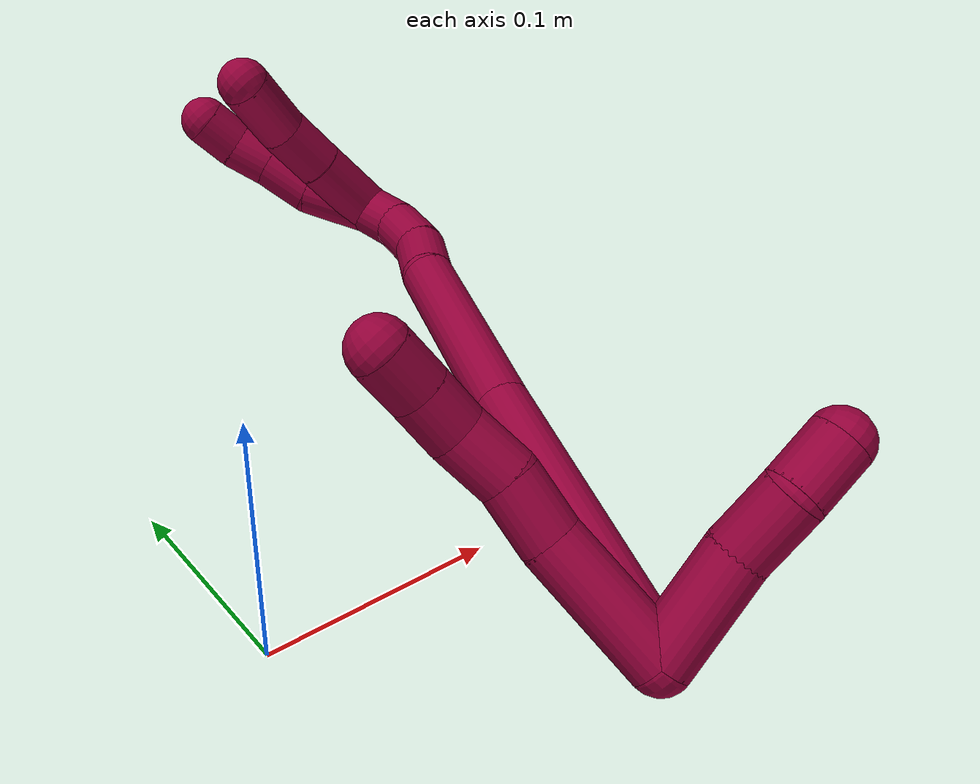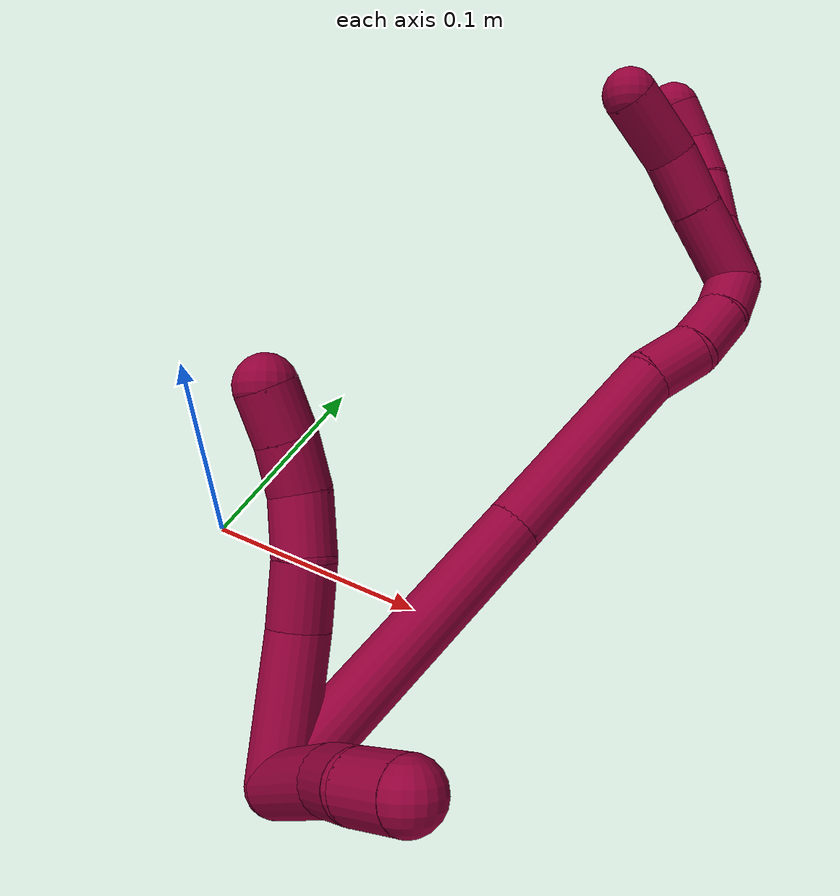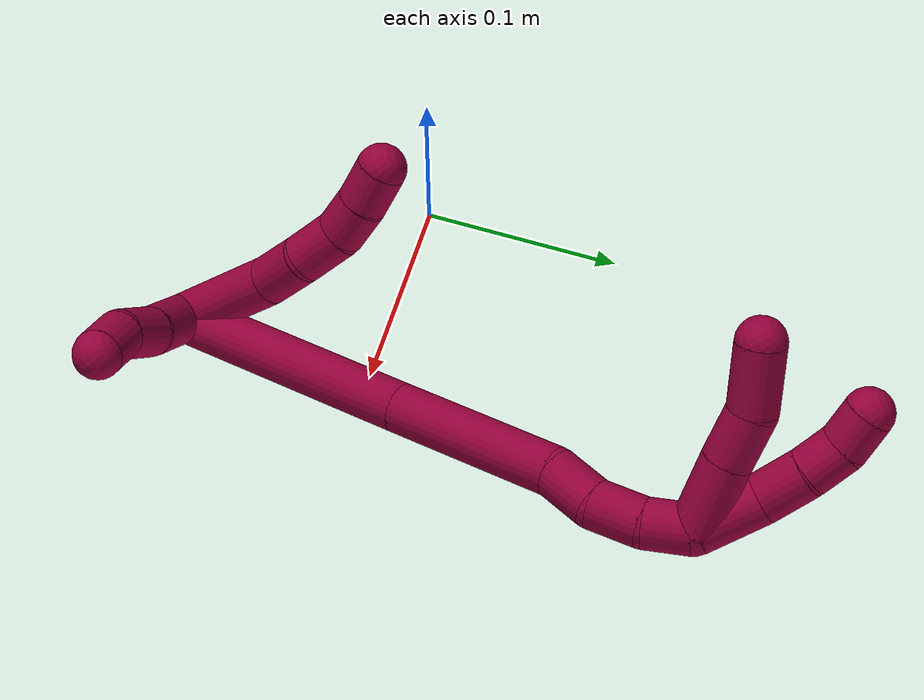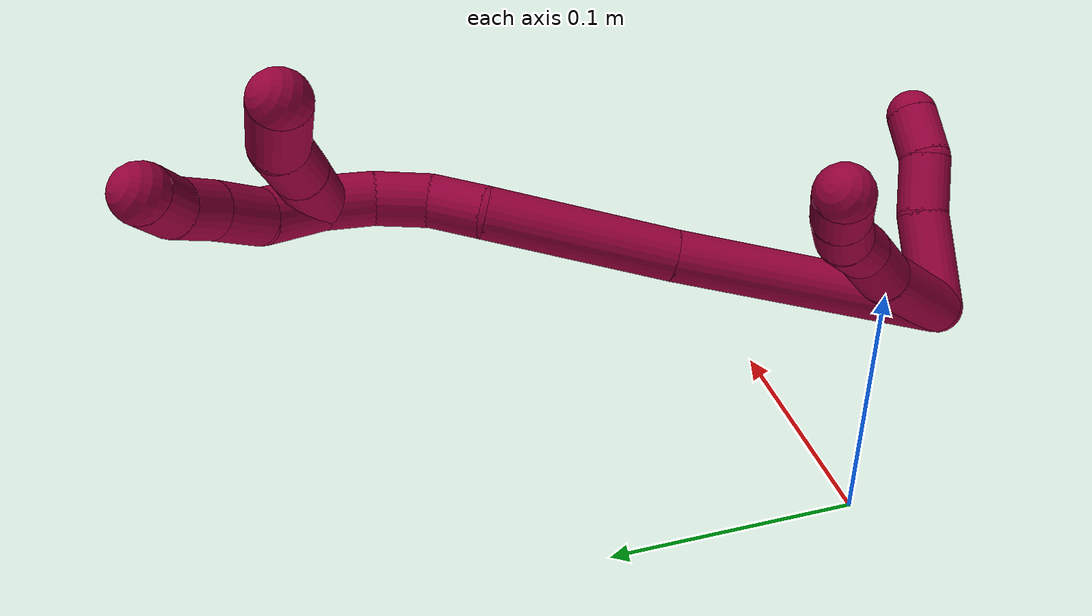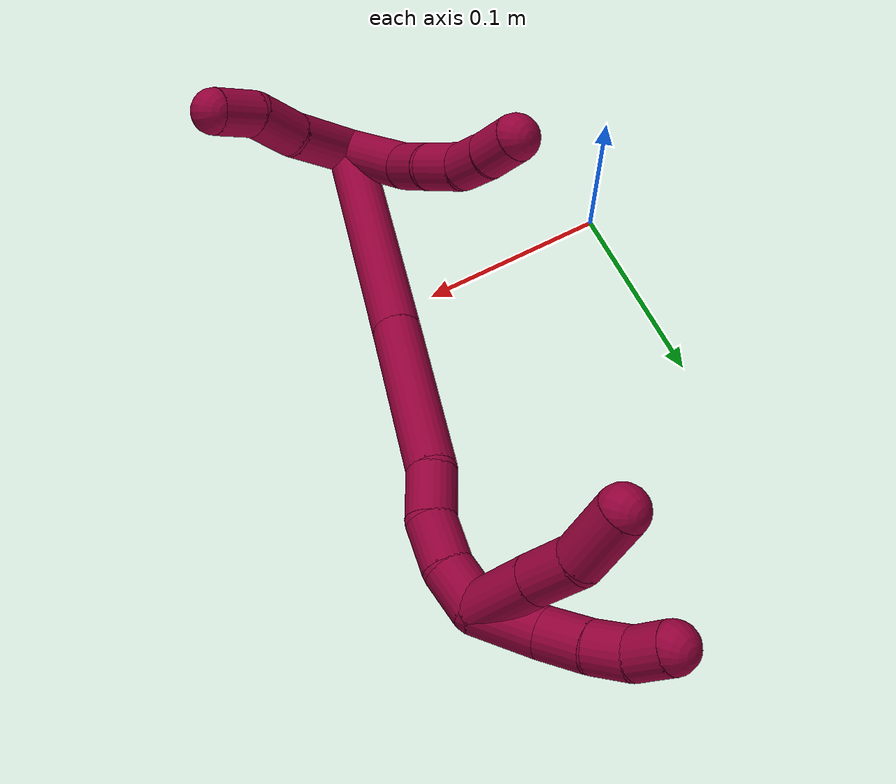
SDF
<sdf version="1.7">
 <world name="default">
  <model name="8">
   <static>0</static>
   <link name="8">
    <collision name="collision-cylinder-e_1_2_8">
     <pose>0.000251 0.003125 0.027883 -0.111617 0.00896 -0.000501</pose>
     <geometry><cylinder><radius>0.0125</radius><length>0.056116</length></cylinder></geometry>
     <surface>
      <friction><ode><mu>1.16</mu><mu2>1.16</mu2><slip1>0</slip1><slip2>0</slip2></ode></friction>
      <contact><ode><kp>1e+06</kp><kd>1</kd><max_vel>0</max_vel><min_depth>0.001</min_depth></ode></contact>
     </surface>
    </collision>
    <visual name="visual-cylinder-e_1_2_8">
     <pose>0.000251 0.003125 0.027883 -0.111617 0.00896 -0.000501</pose>
     <geometry><cylinder><radius>0.0125</radius><length>0.056116</length></cylinder></geometry>
     <material><ambient>0.584314 0 0.227451 1</ambient></material>
    </visual>
    <collision name="collision-cylinder-e_2_8_9">
     <pose>0.002611 0.006282 0.06888 -0.00243 0.159416 -0.000194</pose>
     <geometry><cylinder><radius>0.0125</radius><length>0.026567</length></cylinder></geometry>
     <surface>
      <friction><ode><mu>1.16</mu><mu2>1.16</mu2><slip1>0</slip1><slip2>0</slip2></ode></friction>
      <contact><ode><kp>1e+06</kp><kd>1</kd><max_vel>0</max_vel><min_depth>0.001</min_depth></ode></contact>
     </surface>
    </collision>
    <visual name="visual-cylinder-e_2_8_9">
     <pose>0.002611 0.006282 0.06888 -0.00243 0.159416 -0.000194</pose>
     <geometry><cylinder><radius>0.0125</radius><length>0.026567</length></cylinder></geometry>
     <material><ambient>0.584314 0 0.227451 1</ambient></material>
    </visual>
    <collision name="collision-cylinder-e_3_9_10">
     <pose>0.003808 0.005545 0.094271 0.0626 -0.07402 -0.002319</pose>
     <geometry><cylinder><radius>0.0125</radius><length>0.024666</length></cylinder></geometry>
     <surface>
      <friction><ode><mu>1.16</mu><mu2>1.16</mu2><slip1>0</slip1><slip2>0</slip2></ode></friction>
      <contact><ode><kp>1e+06</kp><kd>1</kd><max_vel>0</max_vel><min_depth>0.001</min_depth></ode></contact>
     </surface>
    </collision>
    <visual name="visual-cylinder-e_3_9_10">
     <pose>0.003808 0.005545 0.094271 0.0626 -0.07402 -0.002319</pose>
     <geometry><cylinder><radius>0.0125</radius><length>0.024666</length></cylinder></geometry>
     <material><ambient>0.584314 0 0.227451 1</ambient></material>
    </visual>
    <collision name="collision-cylinder-e_4_10_11">
     <pose>0.003643 0.001447 0.116597 0.319777 0.070412 0.01136</pose>
     <geometry><cylinder><radius>0.0125</radius><length>0.021229</length></cylinder></geometry>
     <surface>
      <friction><ode><mu>1.16</mu><mu2>1.16</mu2><slip1>0</slip1><slip2>0</slip2></ode></friction>
      <contact><ode><kp>1e+06</kp><kd>1</kd><max_vel>0</max_vel><min_depth>0.001</min_depth></ode></contact>
     </surface>
    </collision>
    <visual name="visual-cylinder-e_4_10_11">
     <pose>0.003643 0.001447 0.116597 0.319777 0.070412 0.01136</pose>
     <geometry><cylinder><radius>0.0125</radius><length>0.021229</length></cylinder></geometry>
     <material><ambient>0.584314 0 0.227451 1</ambient></material>
    </visual>
    <collision name="collision-cylinder-e_5_11_6">
     <pose>0.005135 -0.00638 0.13634 0.434547 0.069684 0.015389</pose>
     <geometry><cylinder><radius>0.0125</radius><length>0.021421</length></cylinder></geometry>
     <surface>
      <friction><ode><mu>1.16</mu><mu2>1.16</mu2><slip1>0</slip1><slip2>0</slip2></ode></friction>
      <contact><ode><kp>1e+06</kp><kd>1</kd><max_vel>0</max_vel><min_depth>0.001</min_depth></ode></contact>
     </surface>
    </collision>
    <visual name="visual-cylinder-e_5_11_6">
     <pose>0.005135 -0.00638 0.13634 0.434547 0.069684 0.015389</pose>
     <geometry><cylinder><radius>0.0125</radius><length>0.021421</length></cylinder></geometry>
     <material><ambient>0.584314 0 0.227451 1</ambient></material>
    </visual>
    <collision name="collision-cylinder-e_1_2_12">
     <pose>0.022641 0.001312 0.004606 -0.277595 1.36235 -0.225516</pose>
     <geometry><cylinder><radius>0.0125</radius><length>0.046283</length></cylinder></geometry>
     <surface>
      <friction><ode><mu>1.16</mu><mu2>1.16</mu2><slip1>0</slip1><slip2>0</slip2></ode></friction>
      <contact><ode><kp>1e+06</kp><kd>1</kd><max_vel>0</max_vel><min_depth>0.001</min_depth></ode></contact>
     </surface>
    </collision>
    <visual name="visual-cylinder-e_1_2_12">
     <pose>0.022641 0.001312 0.004606 -0.277595 1.36235 -0.225516</pose>
     <geometry><cylinder><radius>0.0125</radius><length>0.046283</length></cylinder></geometry>
     <material><ambient>0.584314 0 0.227451 1</ambient></material>
    </visual>
    <collision name="collision-cylinder-e_2_12_13">
     <pose>0.059433 0.001121 0.010936 0.717174 1.4105 0.617698</pose>
     <geometry><cylinder><radius>0.0125</radius><length>0.02867</length></cylinder></geometry>
     <surface>
      <friction><ode><mu>1.16</mu><mu2>1.16</mu2><slip1>0</slip1><slip2>0</slip2></ode></friction>
      <contact><ode><kp>1e+06</kp><kd>1</kd><max_vel>0</max_vel><min_depth>0.001</min_depth></ode></contact>
     </surface>
    </collision>
    <visual name="visual-cylinder-e_2_12_13">
     <pose>0.059433 0.001121 0.010936 0.717174 1.4105 0.617698</pose>
     <geometry><cylinder><radius>0.0125</radius><length>0.02867</length></cylinder></geometry>
     <material><ambient>0.584314 0 0.227451 1</ambient></material>
    </visual>
    <collision name="collision-cylinder-e_3_13_5">
     <pose>0.085756 0.00249 0.013316 -1.34645 1.33322 -1.12071</pose>
     <geometry><cylinder><radius>0.0125</radius><length>0.025046</length></cylinder></geometry>
     <surface>
      <friction><ode><mu>1.16</mu><mu2>1.16</mu2><slip1>0</slip1><slip2>0</slip2></ode></friction>
      <contact><ode><kp>1e+06</kp><kd>1</kd><max_vel>0</max_vel><min_depth>0.001</min_depth></ode></contact>
     </surface>
    </collision>
    <visual name="visual-cylinder-e_3_13_5">
     <pose>0.085756 0.00249 0.013316 -1.34645 1.33322 -1.12071</pose>
     <geometry><cylinder><radius>0.0125</radius><length>0.025046</length></cylinder></geometry>
     <material><ambient>0.584314 0 0.227451 1</ambient></material>
    </visual>
    <collision name="collision-cylinder-e_1_2_14">
     <pose>0.005156 0.047 0.047394 -0.781223 0.077096 -0.031759</pose>
     <geometry><cylinder><radius>0.0125</radius><length>0.133891</length></cylinder></geometry>
     <surface>
      <friction><ode><mu>1.16</mu><mu2>1.16</mu2><slip1>0</slip1><slip2>0</slip2></ode></friction>
      <contact><ode><kp>1e+06</kp><kd>1</kd><max_vel>0</max_vel><min_depth>0.001</min_depth></ode></contact>
     </surface>
    </collision>
    <visual name="visual-cylinder-e_1_2_14">
     <pose>0.005156 0.047 0.047394 -0.781223 0.077096 -0.031759</pose>
     <geometry><cylinder><radius>0.0125</radius><length>0.133891</length></cylinder></geometry>
     <material><ambient>0.584314 0 0.227451 1</ambient></material>
    </visual>
    <collision name="collision-cylinder-e_2_14_15">
     <pose>0.014942 0.125253 0.127301 -0.765637 0.102289 -0.04122</pose>
     <geometry><cylinder><radius>0.0125</radius><length>0.090672</length></cylinder></geometry>
     <surface>
      <friction><ode><mu>1.16</mu><mu2>1.16</mu2><slip1>0</slip1><slip2>0</slip2></ode></friction>
      <contact><ode><kp>1e+06</kp><kd>1</kd><max_vel>0</max_vel><min_depth>0.001</min_depth></ode></contact>
     </surface>
    </collision>
    <visual name="visual-cylinder-e_2_14_15">
     <pose>0.014942 0.125253 0.127301 -0.765637 0.102289 -0.04122</pose>
     <geometry><cylinder><radius>0.0125</radius><length>0.090672</length></cylinder></geometry>
     <material><ambient>0.584314 0 0.227451 1</ambient></material>
    </visual>
    <collision name="collision-cylinder-e_3_15_16">
     <pose>0.021918 0.167435 0.166532 -1.01964 0.180963 -0.101371</pose>
     <geometry><cylinder><radius>0.0125</radius><length>0.026082</length></cylinder></geometry>
     <surface>
      <friction><ode><mu>1.16</mu><mu2>1.16</mu2><slip1>0</slip1><slip2>0</slip2></ode></friction>
      <contact><ode><kp>1e+06</kp><kd>1</kd><max_vel>0</max_vel><min_depth>0.001</min_depth></ode></contact>
     </surface>
    </collision>
    <visual name="visual-cylinder-e_3_15_16">
     <pose>0.021918 0.167435 0.166532 -1.01964 0.180963 -0.101371</pose>
     <geometry><cylinder><radius>0.0125</radius><length>0.026082</length></cylinder></geometry>
     <material><ambient>0.584314 0 0.227451 1</ambient></material>
    </visual>
    <collision name="collision-cylinder-e_4_16_17">
     <pose>0.02329 0.187619 0.182 -0.813486 -0.076412 0.032928</pose>
     <geometry><cylinder><radius>0.0125</radius><length>0.025548</length></cylinder></geometry>
     <surface>
      <friction><ode><mu>1.16</mu><mu2>1.16</mu2><slip1>0</slip1><slip2>0</slip2></ode></friction>
      <contact><ode><kp>1e+06</kp><kd>1</kd><max_vel>0</max_vel><min_depth>0.001</min_depth></ode></contact>
     </surface>
    </collision>
    <visual name="visual-cylinder-e_4_16_17">
     <pose>0.02329 0.187619 0.182 -0.813486 -0.076412 0.032928</pose>
     <geometry><cylinder><radius>0.0125</radius><length>0.025548</length></cylinder></geometry>
     <material><ambient>0.584314 0 0.227451 1</ambient></material>
    </visual>
    <collision name="collision-cylinder-e_5_17_1">
     <pose>0.019072 0.203703 0.199945 -0.638733 -0.27592 0.091762</pose>
     <geometry><cylinder><radius>0.0125</radius><length>0.023806</length></cylinder></geometry>
     <surface>
      <friction><ode><mu>1.16</mu><mu2>1.16</mu2><slip1>0</slip1><slip2>0</slip2></ode></friction>
      <contact><ode><kp>1e+06</kp><kd>1</kd><max_vel>0</max_vel><min_depth>0.001</min_depth></ode></contact>
     </surface>
    </collision>
    <visual name="visual-cylinder-e_5_17_1">
     <pose>0.019072 0.203703 0.199945 -0.638733 -0.27592 0.091762</pose>
     <geometry><cylinder><radius>0.0125</radius><length>0.023806</length></cylinder></geometry>
     <material><ambient>0.584314 0 0.227451 1</ambient></material>
    </visual>
    <collision name="collision-cylinder-e_1_1_18">
     <pose>0.015537 0.199676 0.225046 0.598859 -0.015189 -0.004689</pose>
     <geometry><cylinder><radius>0.0125</radius><length>0.038519</length></cylinder></geometry>
     <surface>
      <friction><ode><mu>1.16</mu><mu2>1.16</mu2><slip1>0</slip1><slip2>0</slip2></ode></friction>
      <contact><ode><kp>1e+06</kp><kd>1</kd><max_vel>0</max_vel><min_depth>0.001</min_depth></ode></contact>
     </surface>
    </collision>
    <visual name="visual-cylinder-e_1_1_18">
     <pose>0.015537 0.199676 0.225046 0.598859 -0.015189 -0.004689</pose>
     <geometry><cylinder><radius>0.0125</radius><length>0.038519</length></cylinder></geometry>
     <material><ambient>0.584314 0 0.227451 1</ambient></material>
    </visual>
    <collision name="collision-cylinder-e_2_18_19">
     <pose>0.015116 0.181609 0.252527 0.557154 -0.009368 -0.002679</pose>
     <geometry><cylinder><radius>0.0125</radius><length>0.027276</length></cylinder></geometry>
     <surface>
      <friction><ode><mu>1.16</mu><mu2>1.16</mu2><slip1>0</slip1><slip2>0</slip2></ode></friction>
      <contact><ode><kp>1e+06</kp><kd>1</kd><max_vel>0</max_vel><min_depth>0.001</min_depth></ode></contact>
     </surface>
    </collision>
    <visual name="visual-cylinder-e_2_18_19">
     <pose>0.015116 0.181609 0.252527 0.557154 -0.009368 -0.002679</pose>
     <geometry><cylinder><radius>0.0125</radius><length>0.027276</length></cylinder></geometry>
     <material><ambient>0.584314 0 0.227451 1</ambient></material>
    </visual>
    <collision name="collision-cylinder-e_3_19_4">
     <pose>0.017042 0.161531 0.27518 0.859977 0.120345 0.055244</pose>
     <geometry><cylinder><radius>0.0125</radius><length>0.034205</length></cylinder></geometry>
     <surface>
      <friction><ode><mu>1.16</mu><mu2>1.16</mu2><slip1>0</slip1><slip2>0</slip2></ode></friction>
      <contact><ode><kp>1e+06</kp><kd>1</kd><max_vel>0</max_vel><min_depth>0.001</min_depth></ode></contact>
     </surface>
    </collision>
    <visual name="visual-cylinder-e_3_19_4">
     <pose>0.017042 0.161531 0.27518 0.859977 0.120345 0.055244</pose>
     <geometry><cylinder><radius>0.0125</radius><length>0.034205</length></cylinder></geometry>
     <material><ambient>0.584314 0 0.227451 1</ambient></material>
    </visual>
    <collision name="collision-cylinder-e_1_1_20">
     <pose>0.007741 0.211447 0.223941 -0.061853 -0.499331 0.015776</pose>
     <geometry><cylinder><radius>0.0125</radius><length>0.033784</length></cylinder></geometry>
     <surface>
      <friction><ode><mu>1.16</mu><mu2>1.16</mu2><slip1>0</slip1><slip2>0</slip2></ode></friction>
      <contact><ode><kp>1e+06</kp><kd>1</kd><max_vel>0</max_vel><min_depth>0.001</min_depth></ode></contact>
     </surface>
    </collision>
    <visual name="visual-cylinder-e_1_1_20">
     <pose>0.007741 0.211447 0.223941 -0.061853 -0.499331 0.015776</pose>
     <geometry><cylinder><radius>0.0125</radius><length>0.033784</length></cylinder></geometry>
     <material><ambient>0.584314 0 0.227451 1</ambient></material>
    </visual>
    <collision name="collision-cylinder-e_2_20_21">
     <pose>-0.003087 0.211795 0.251164 0.045805 -0.216832 -0.004986</pose>
     <geometry><cylinder><radius>0.0125</radius><length>0.025467</length></cylinder></geometry>
     <surface>
      <friction><ode><mu>1.16</mu><mu2>1.16</mu2><slip1>0</slip1><slip2>0</slip2></ode></friction>
      <contact><ode><kp>1e+06</kp><kd>1</kd><max_vel>0</max_vel><min_depth>0.001</min_depth></ode></contact>
     </surface>
    </collision>
    <visual name="visual-cylinder-e_2_20_21">
     <pose>-0.003087 0.211795 0.251164 0.045805 -0.216832 -0.004986</pose>
     <geometry><cylinder><radius>0.0125</radius><length>0.025467</length></cylinder></geometry>
     <material><ambient>0.584314 0 0.227451 1</ambient></material>
    </visual>
    <collision name="collision-cylinder-e_3_21_22">
     <pose>-0.008892 0.209802 0.27327 0.145907 -0.303531 -0.022354</pose>
     <geometry><cylinder><radius>0.0125</radius><length>0.020513</length></cylinder></geometry>
     <surface>
      <friction><ode><mu>1.16</mu><mu2>1.16</mu2><slip1>0</slip1><slip2>0</slip2></ode></friction>
      <contact><ode><kp>1e+06</kp><kd>1</kd><max_vel>0</max_vel><min_depth>0.001</min_depth></ode></contact>
     </surface>
    </collision>
    <visual name="visual-cylinder-e_3_21_22">
     <pose>-0.008892 0.209802 0.27327 0.145907 -0.303531 -0.022354</pose>
     <geometry><cylinder><radius>0.0125</radius><length>0.020513</length></cylinder></geometry>
     <material><ambient>0.584314 0 0.227451 1</ambient></material>
    </visual>
    <collision name="collision-cylinder-e_4_22_3">
     <pose>-0.012944 0.204299 0.29216 0.417138 -0.097619 -0.020677</pose>
     <geometry><cylinder><radius>0.0125</radius><length>0.020237</length></cylinder></geometry>
     <surface>
      <friction><ode><mu>1.16</mu><mu2>1.16</mu2><slip1>0</slip1><slip2>0</slip2></ode></friction>
      <contact><ode><kp>1e+06</kp><kd>1</kd><max_vel>0</max_vel><min_depth>0.001</min_depth></ode></contact>
     </surface>
    </collision>
    <visual name="visual-cylinder-e_4_22_3">
     <pose>-0.012944 0.204299 0.29216 0.417138 -0.097619 -0.020677</pose>
     <geometry><cylinder><radius>0.0125</radius><length>0.020237</length></cylinder></geometry>
     <material><ambient>0.584314 0 0.227451 1</ambient></material>
    </visual>
    <collision name="collision-sphere-3">
     <pose>-0.01393 0.200219 0.301367 0 -0 0</pose>
     <geometry><sphere><radius>0.0125</radius></sphere></geometry>
     <surface>
      <friction><ode><mu>1.16</mu><mu2>1.16</mu2><slip1>0</slip1><slip2>0</slip2></ode></friction>
      <contact><ode><kp>1e+06</kp><kd>1</kd><max_vel>0</max_vel><min_depth>0.001</min_depth></ode></contact>
     </surface>
    </collision>
    <visual name="visual-sphere-3">
     <pose>-0.01393 0.200219 0.301367 0 -0 0</pose>
     <geometry><sphere><radius>0.0125</radius></sphere></geometry>
     <material><ambient>0.584314 0 0.227451 1</ambient></material>
    </visual>
    <collision name="collision-sphere-22">
     <pose>-0.011958 0.208379 0.282954 0 -0 0</pose>
     <geometry><sphere><radius>0.0125</radius></sphere></geometry>
     <surface>
      <friction><ode><mu>1.16</mu><mu2>1.16</mu2><slip1>0</slip1><slip2>0</slip2></ode></friction>
      <contact><ode><kp>1e+06</kp><kd>1</kd><max_vel>0</max_vel><min_depth>0.001</min_depth></ode></contact>
     </surface>
    </collision>
    <visual name="visual-sphere-22">
     <pose>-0.011958 0.208379 0.282954 0 -0 0</pose>
     <geometry><sphere><radius>0.0125</radius></sphere></geometry>
     <material><ambient>0.584314 0 0.227451 1</ambient></material>
    </visual>
    <collision name="collision-sphere-21">
     <pose>-0.005827 0.211225 0.263586 0 -0 0</pose>
     <geometry><sphere><radius>0.0125</radius></sphere></geometry>
     <surface>
      <friction><ode><mu>1.16</mu><mu2>1.16</mu2><slip1>0</slip1><slip2>0</slip2></ode></friction>
      <contact><ode><kp>1e+06</kp><kd>1</kd><max_vel>0</max_vel><min_depth>0.001</min_depth></ode></contact>
     </surface>
    </collision>
    <visual name="visual-sphere-21">
     <pose>-0.005827 0.211225 0.263586 0 -0 0</pose>
     <geometry><sphere><radius>0.0125</radius></sphere></geometry>
     <material><ambient>0.584314 0 0.227451 1</ambient></material>
    </visual>
    <collision name="collision-sphere-20">
     <pose>-0.000348 0.212364 0.238742 0 -0 0</pose>
     <geometry><sphere><radius>0.0125</radius></sphere></geometry>
     <surface>
      <friction><ode><mu>1.16</mu><mu2>1.16</mu2><slip1>0</slip1><slip2>0</slip2></ode></friction>
      <contact><ode><kp>1e+06</kp><kd>1</kd><max_vel>0</max_vel><min_depth>0.001</min_depth></ode></contact>
     </surface>
    </collision>
    <visual name="visual-sphere-20">
     <pose>-0.000348 0.212364 0.238742 0 -0 0</pose>
     <geometry><sphere><radius>0.0125</radius></sphere></geometry>
     <material><ambient>0.584314 0 0.227451 1</ambient></material>
    </visual>
    <collision name="collision-sphere-4">
     <pose>0.019095 0.148664 0.286258 0 -0 0</pose>
     <geometry><sphere><radius>0.0125</radius></sphere></geometry>
     <surface>
      <friction><ode><mu>1.16</mu><mu2>1.16</mu2><slip1>0</slip1><slip2>0</slip2></ode></friction>
      <contact><ode><kp>1e+06</kp><kd>1</kd><max_vel>0</max_vel><min_depth>0.001</min_depth></ode></contact>
     </surface>
    </collision>
    <visual name="visual-sphere-4">
     <pose>0.019095 0.148664 0.286258 0 -0 0</pose>
     <geometry><sphere><radius>0.0125</radius></sphere></geometry>
     <material><ambient>0.584314 0 0.227451 1</ambient></material>
    </visual>
    <collision name="collision-sphere-6">
     <pose>0.005881 -0.010878 0.146032 0 -0 0</pose>
     <geometry><sphere><radius>0.0125</radius></sphere></geometry>
     <surface>
      <friction><ode><mu>1.16</mu><mu2>1.16</mu2><slip1>0</slip1><slip2>0</slip2></ode></friction>
      <contact><ode><kp>1e+06</kp><kd>1</kd><max_vel>0</max_vel><min_depth>0.001</min_depth></ode></contact>
     </surface>
    </collision>
    <visual name="visual-sphere-6">
     <pose>0.005881 -0.010878 0.146032 0 -0 0</pose>
     <geometry><sphere><radius>0.0125</radius></sphere></geometry>
     <material><ambient>0.584314 0 0.227451 1</ambient></material>
    </visual>
    <collision name="collision-sphere-11">
     <pose>0.00439 -0.001882 0.126649 0 -0 0</pose>
     <geometry><sphere><radius>0.0125</radius></sphere></geometry>
     <surface>
      <friction><ode><mu>1.16</mu><mu2>1.16</mu2><slip1>0</slip1><slip2>0</slip2></ode></friction>
      <contact><ode><kp>1e+06</kp><kd>1</kd><max_vel>0</max_vel><min_depth>0.001</min_depth></ode></contact>
     </surface>
    </collision>
    <visual name="visual-sphere-11">
     <pose>0.00439 -0.001882 0.126649 0 -0 0</pose>
     <geometry><sphere><radius>0.0125</radius></sphere></geometry>
     <material><ambient>0.584314 0 0.227451 1</ambient></material>
    </visual>
    <collision name="collision-sphere-10">
     <pose>0.002896 0.004775 0.106546 0 -0 0</pose>
     <geometry><sphere><radius>0.0125</radius></sphere></geometry>
     <surface>
      <friction><ode><mu>1.16</mu><mu2>1.16</mu2><slip1>0</slip1><slip2>0</slip2></ode></friction>
      <contact><ode><kp>1e+06</kp><kd>1</kd><max_vel>0</max_vel><min_depth>0.001</min_depth></ode></contact>
     </surface>
    </collision>
    <visual name="visual-sphere-10">
     <pose>0.002896 0.004775 0.106546 0 -0 0</pose>
     <geometry><sphere><radius>0.0125</radius></sphere></geometry>
     <material><ambient>0.584314 0 0.227451 1</ambient></material>
    </visual>
    <collision name="collision-sphere-9">
     <pose>0.00472 0.006314 0.081995 0 -0 0</pose>
     <geometry><sphere><radius>0.0125</radius></sphere></geometry>
     <surface>
      <friction><ode><mu>1.16</mu><mu2>1.16</mu2><slip1>0</slip1><slip2>0</slip2></ode></friction>
      <contact><ode><kp>1e+06</kp><kd>1</kd><max_vel>0</max_vel><min_depth>0.001</min_depth></ode></contact>
     </surface>
    </collision>
    <visual name="visual-sphere-9">
     <pose>0.00472 0.006314 0.081995 0 -0 0</pose>
     <geometry><sphere><radius>0.0125</radius></sphere></geometry>
     <material><ambient>0.584314 0 0.227451 1</ambient></material>
    </visual>
    <collision name="collision-sphere-2">
     <geometry><sphere><radius>0.0125</radius></sphere></geometry>
     <surface>
      <friction><ode><mu>1.16</mu><mu2>1.16</mu2><slip1>0</slip1><slip2>0</slip2></ode></friction>
      <contact><ode><kp>1e+06</kp><kd>1</kd><max_vel>0</max_vel><min_depth>0.001</min_depth></ode></contact>
     </surface>
    </collision>
    <visual name="visual-sphere-2">
     <geometry><sphere><radius>0.0125</radius></sphere></geometry>
     <material><ambient>0.584314 0 0.227451 1</ambient></material>
    </visual>
    <collision name="collision-sphere-19">
     <pose>0.014989 0.174398 0.264102 0 -0 0</pose>
     <geometry><sphere><radius>0.0125</radius></sphere></geometry>
     <surface>
      <friction><ode><mu>1.16</mu><mu2>1.16</mu2><slip1>0</slip1><slip2>0</slip2></ode></friction>
      <contact><ode><kp>1e+06</kp><kd>1</kd><max_vel>0</max_vel><min_depth>0.001</min_depth></ode></contact>
     </surface>
    </collision>
    <visual name="visual-sphere-19">
     <pose>0.014989 0.174398 0.264102 0 -0 0</pose>
     <geometry><sphere><radius>0.0125</radius></sphere></geometry>
     <material><ambient>0.584314 0 0.227451 1</ambient></material>
    </visual>
    <collision name="collision-sphere-8">
     <pose>0.000503 0.00625 0.055765 0 -0 0</pose>
     <geometry><sphere><radius>0.0125</radius></sphere></geometry>
     <surface>
      <friction><ode><mu>1.16</mu><mu2>1.16</mu2><slip1>0</slip1><slip2>0</slip2></ode></friction>
      <contact><ode><kp>1e+06</kp><kd>1</kd><max_vel>0</max_vel><min_depth>0.001</min_depth></ode></contact>
     </surface>
    </collision>
    <visual name="visual-sphere-8">
     <pose>0.000503 0.00625 0.055765 0 -0 0</pose>
     <geometry><sphere><radius>0.0125</radius></sphere></geometry>
     <material><ambient>0.584314 0 0.227451 1</ambient></material>
    </visual>
    <collision name="collision-sphere-12">
     <pose>0.045281 0.002625 0.009211 0 -0 0</pose>
     <geometry><sphere><radius>0.0125</radius></sphere></geometry>
     <surface>
      <friction><ode><mu>1.16</mu><mu2>1.16</mu2><slip1>0</slip1><slip2>0</slip2></ode></friction>
      <contact><ode><kp>1e+06</kp><kd>1</kd><max_vel>0</max_vel><min_depth>0.001</min_depth></ode></contact>
     </surface>
    </collision>
    <visual name="visual-sphere-12">
     <pose>0.045281 0.002625 0.009211 0 -0 0</pose>
     <geometry><sphere><radius>0.0125</radius></sphere></geometry>
     <material><ambient>0.584314 0 0.227451 1</ambient></material>
    </visual>
    <collision name="collision-sphere-13">
     <pose>0.073584 -0.000383 0.01266 0 -0 0</pose>
     <geometry><sphere><radius>0.0125</radius></sphere></geometry>
     <surface>
      <friction><ode><mu>1.16</mu><mu2>1.16</mu2><slip1>0</slip1><slip2>0</slip2></ode></friction>
      <contact><ode><kp>1e+06</kp><kd>1</kd><max_vel>0</max_vel><min_depth>0.001</min_depth></ode></contact>
     </surface>
    </collision>
    <visual name="visual-sphere-13">
     <pose>0.073584 -0.000383 0.01266 0 -0 0</pose>
     <geometry><sphere><radius>0.0125</radius></sphere></geometry>
     <material><ambient>0.584314 0 0.227451 1</ambient></material>
    </visual>
    <collision name="collision-sphere-5">
     <pose>0.097927 0.005364 0.013971 0 -0 0</pose>
     <geometry><sphere><radius>0.0125</radius></sphere></geometry>
     <surface>
      <friction><ode><mu>1.16</mu><mu2>1.16</mu2><slip1>0</slip1><slip2>0</slip2></ode></friction>
      <contact><ode><kp>1e+06</kp><kd>1</kd><max_vel>0</max_vel><min_depth>0.001</min_depth></ode></contact>
     </surface>
    </collision>
    <visual name="visual-sphere-5">
     <pose>0.097927 0.005364 0.013971 0 -0 0</pose>
     <geometry><sphere><radius>0.0125</radius></sphere></geometry>
     <material><ambient>0.584314 0 0.227451 1</ambient></material>
    </visual>
    <collision name="collision-sphere-14">
     <pose>0.010312 0.093999 0.094787 0 -0 0</pose>
     <geometry><sphere><radius>0.0125</radius></sphere></geometry>
     <surface>
      <friction><ode><mu>1.16</mu><mu2>1.16</mu2><slip1>0</slip1><slip2>0</slip2></ode></friction>
      <contact><ode><kp>1e+06</kp><kd>1</kd><max_vel>0</max_vel><min_depth>0.001</min_depth></ode></contact>
     </surface>
    </collision>
    <visual name="visual-sphere-14">
     <pose>0.010312 0.093999 0.094787 0 -0 0</pose>
     <geometry><sphere><radius>0.0125</radius></sphere></geometry>
     <material><ambient>0.584314 0 0.227451 1</ambient></material>
    </visual>
    <collision name="collision-sphere-15">
     <pose>0.019571 0.156506 0.159815 0 -0 0</pose>
     <geometry><sphere><radius>0.0125</radius></sphere></geometry>
     <surface>
      <friction><ode><mu>1.16</mu><mu2>1.16</mu2><slip1>0</slip1><slip2>0</slip2></ode></friction>
      <contact><ode><kp>1e+06</kp><kd>1</kd><max_vel>0</max_vel><min_depth>0.001</min_depth></ode></contact>
     </surface>
    </collision>
    <visual name="visual-sphere-15">
     <pose>0.019571 0.156506 0.159815 0 -0 0</pose>
     <geometry><sphere><radius>0.0125</radius></sphere></geometry>
     <material><ambient>0.584314 0 0.227451 1</ambient></material>
    </visual>
    <collision name="collision-sphere-16">
     <pose>0.024265 0.178363 0.17325 0 -0 0</pose>
     <geometry><sphere><radius>0.0125</radius></sphere></geometry>
     <surface>
      <friction><ode><mu>1.16</mu><mu2>1.16</mu2><slip1>0</slip1><slip2>0</slip2></ode></friction>
      <contact><ode><kp>1e+06</kp><kd>1</kd><max_vel>0</max_vel><min_depth>0.001</min_depth></ode></contact>
     </surface>
    </collision>
    <visual name="visual-sphere-16">
     <pose>0.024265 0.178363 0.17325 0 -0 0</pose>
     <geometry><sphere><radius>0.0125</radius></sphere></geometry>
     <material><ambient>0.584314 0 0.227451 1</ambient></material>
    </visual>
    <collision name="collision-sphere-17">
     <pose>0.022315 0.196875 0.19075 0 -0 0</pose>
     <geometry><sphere><radius>0.0125</radius></sphere></geometry>
     <surface>
      <friction><ode><mu>1.16</mu><mu2>1.16</mu2><slip1>0</slip1><slip2>0</slip2></ode></friction>
      <contact><ode><kp>1e+06</kp><kd>1</kd><max_vel>0</max_vel><min_depth>0.001</min_depth></ode></contact>
     </surface>
    </collision>
    <visual name="visual-sphere-17">
     <pose>0.022315 0.196875 0.19075 0 -0 0</pose>
     <geometry><sphere><radius>0.0125</radius></sphere></geometry>
     <material><ambient>0.584314 0 0.227451 1</ambient></material>
    </visual>
    <collision name="collision-sphere-1">
     <pose>0.015829 0.210531 0.20914 0 -0 0</pose>
     <geometry><sphere><radius>0.0125</radius></sphere></geometry>
     <surface>
      <friction><ode><mu>1.16</mu><mu2>1.16</mu2><slip1>0</slip1><slip2>0</slip2></ode></friction>
      <contact><ode><kp>1e+06</kp><kd>1</kd><max_vel>0</max_vel><min_depth>0.001</min_depth></ode></contact>
     </surface>
    </collision>
    <visual name="visual-sphere-1">
     <pose>0.015829 0.210531 0.20914 0 -0 0</pose>
     <geometry><sphere><radius>0.0125</radius></sphere></geometry>
     <material><ambient>0.584314 0 0.227451 1</ambient></material>
    </visual>
    <collision name="collision-sphere-18">
     <pose>0.015244 0.18882 0.240952 0 -0 0</pose>
     <geometry><sphere><radius>0.0125</radius></sphere></geometry>
     <surface>
      <friction><ode><mu>1.16</mu><mu2>1.16</mu2><slip1>0</slip1><slip2>0</slip2></ode></friction>
      <contact><ode><kp>1e+06</kp><kd>1</kd><max_vel>0</max_vel><min_depth>0.001</min_depth></ode></contact>
     </surface>
    </collision>
    <visual name="visual-sphere-18">
     <pose>0.015244 0.18882 0.240952 0 -0 0</pose>
     <geometry><sphere><radius>0.0125</radius></sphere></geometry>
     <material><ambient>0.584314 0 0.227451 1</ambient></material>
    </visual>
    <inertial>
     <pose>0.013683 0.095111 0.125422 0 -0 0</pose>
     <mass>0.75</mass>
     <inertia>
      <ixx>0.000325</ixx>
      <ixy>0</ixy>
      <ixz>0</ixz>
      <iyy>0.000259</iyy>
      <iyz>0</iyz>
      <izz>-0.00018</izz>
     </inertia>
    </inertial>
   </link>
   <pose>0.10123 -0.097578 0.011495 -0.540733 -0.713252 -0.363488</pose>
  </model>
 </world>
</sdf>
